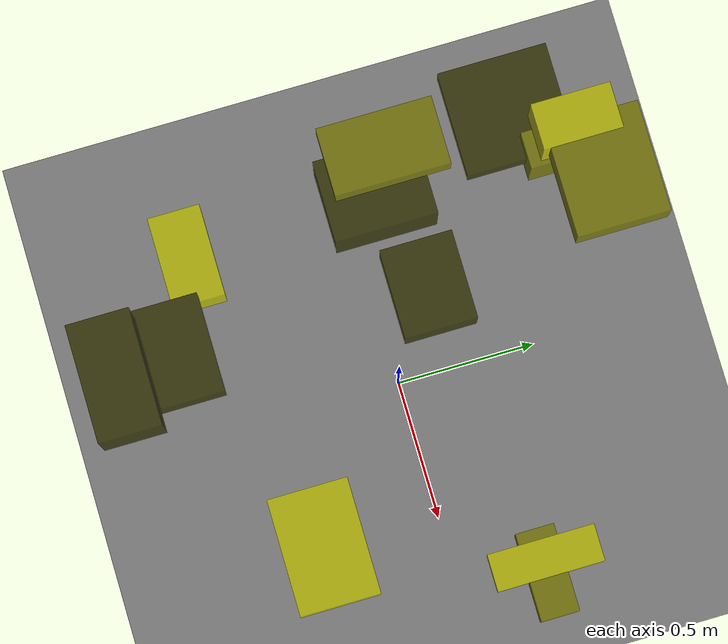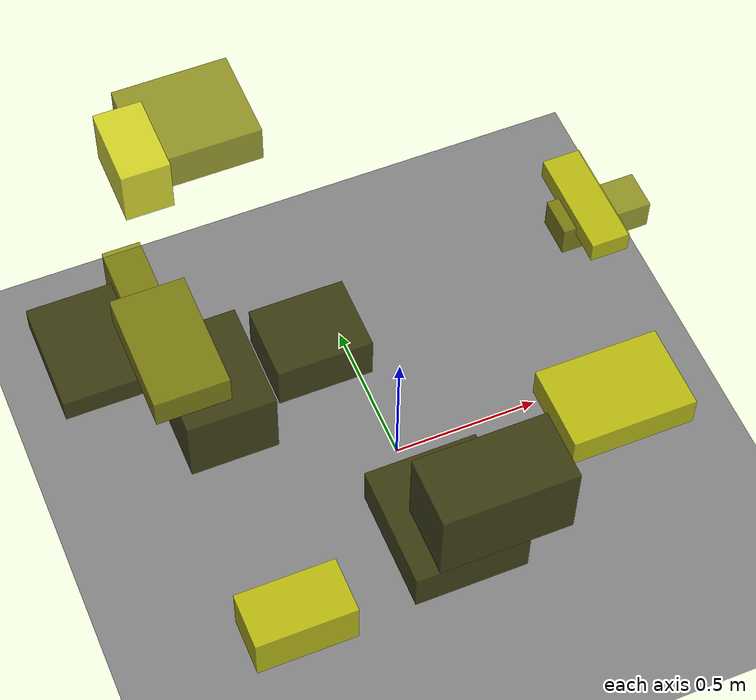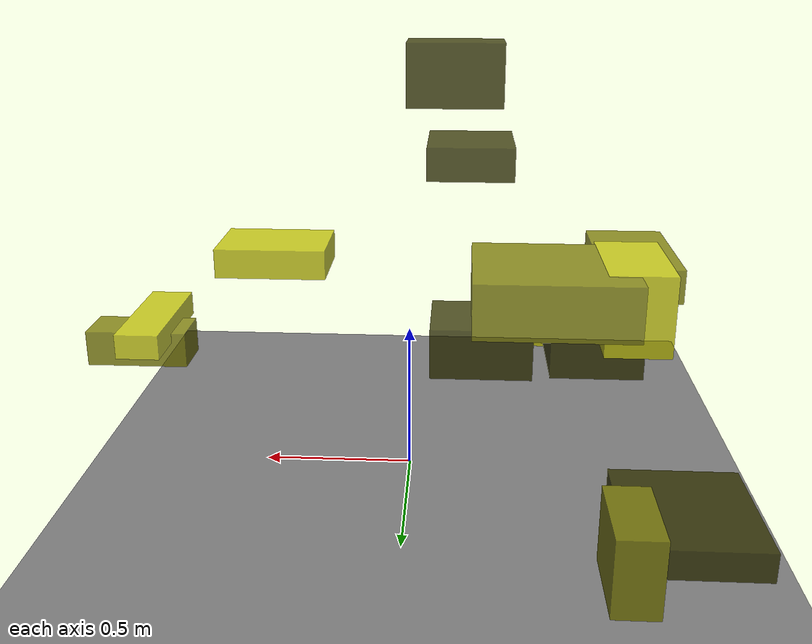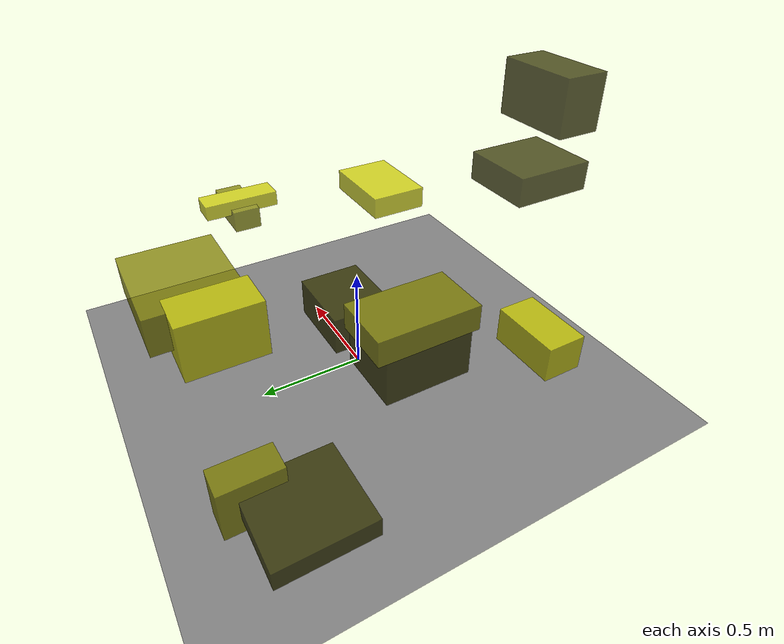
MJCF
<?xml version="1.0"?>
<mujoco model="obstacle_scene">
  <compiler angle="radian" coordinate="local"/>
  <option timestep="0.001" gravity="0 0 -9.81"/>

  <asset>
    <material name="obstacle_mat" rgba="0.8 0.8 0.0 0.8"/>
    <material name="ground_mat" rgba="0.5 0.5 0.5 1"/>
  </asset>

  <worldbody>
    <!-- Ground plane -->
    <geom name="ground" type="plane" size="3 3 0.1" material="ground_mat"/>

    <!-- Obstacles -->
    <body name="obstacle_0" pos="-0.198649 -0.768104 0.931079">
      <geom name="obs_0" type="box" size="0.167817 0.182909 0.065276" rgba="0.2 0.2 0.0 0.8"/>
    </body>
    <body name="obstacle_1" pos="-0.381253 0.816714 0.939765">
      <geom name="obs_1" type="box" size="0.190273 0.158577 0.067244" rgba="0.5 0.5 0.0 0.8"/>
    </body>
    <body name="obstacle_2" pos="-0.585936 -0.595880 0.319292">
      <geom name="obs_2" type="box" size="0.164245 0.093131 0.084527" rgba="0.8 0.8 0.0 0.8"/>
    </body>
    <body name="obstacle_3" pos="-0.585447 0.084618 0.580349">
      <geom name="obs_3" type="box" size="0.141845 0.179140 0.124460" rgba="0.2 0.2 0.0 0.8"/>
    </body>
    <body name="obstacle_4" pos="-0.626213 0.775248 0.200030">
      <geom name="obs_4" type="box" size="0.066226 0.128316 0.117850" rgba="0.5 0.5 0.0 0.8"/>
    </body>
    <body name="obstacle_5" pos="0.765350 0.282533 0.615227">
      <geom name="obs_5" type="box" size="0.063914 0.185240 0.036740" rgba="0.8 0.8 0.0 0.8"/>
    </body>
    <body name="obstacle_6" pos="-0.231283 0.168967 0.539474">
      <geom name="obs_6" type="box" size="0.156009 0.127503 0.079539" rgba="0.2 0.2 0.0 0.8"/>
    </body>
    <body name="obstacle_7" pos="0.812347 0.276391 0.553998">
      <geom name="obs_7" type="box" size="0.152044 0.066267 0.053651" rgba="0.5 0.5 0.0 0.8"/>
    </body>
    <body name="obstacle_8" pos="0.524016 -0.418145 0.623474">
      <geom name="obs_8" type="box" size="0.201514 0.139516 0.053646" rgba="0.8 0.8 0.0 0.8"/>
    </body>
    <body name="obstacle_9" pos="-0.800130 0.630991 0.199678">
      <geom name="obs_9" type="box" size="0.190304 0.199247 0.044203" rgba="0.2 0.2 0.0 0.8"/>
    </body>
    <body name="obstacle_10" pos="-0.689390 0.143358 0.785666">
      <geom name="obs_10" type="box" size="0.118591 0.200245 0.051016" rgba="0.5 0.5 0.0 0.8"/>
    </body>
    <body name="obstacle_11" pos="-0.576481 0.770733 0.908758">
      <geom name="obs_11" type="box" size="0.078802 0.135288 0.100139" rgba="0.8 0.8 0.0 0.8"/>
    </body>
    <body name="obstacle_12" pos="-0.133239 -0.900066 1.236227">
      <geom name="obs_12" type="box" size="0.193032 0.103558 0.126832" rgba="0.2 0.2 0.0 0.8"/>
    </body>
  </worldbody>
</mujoco>
